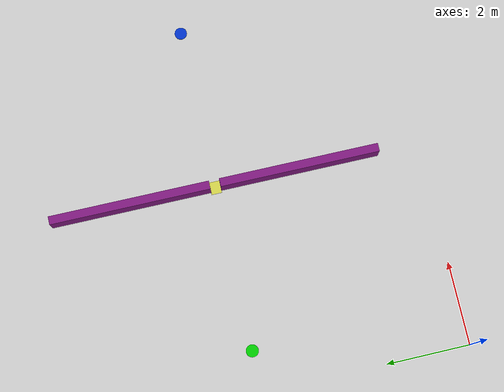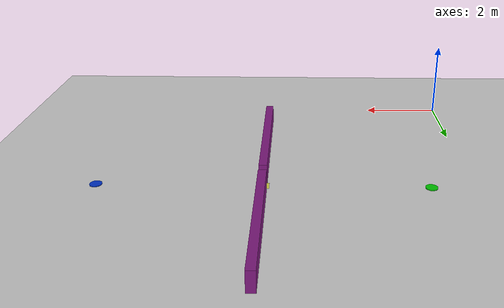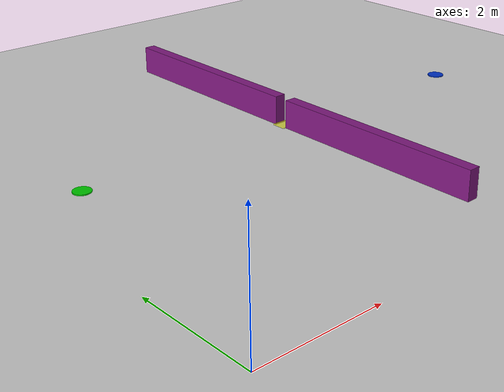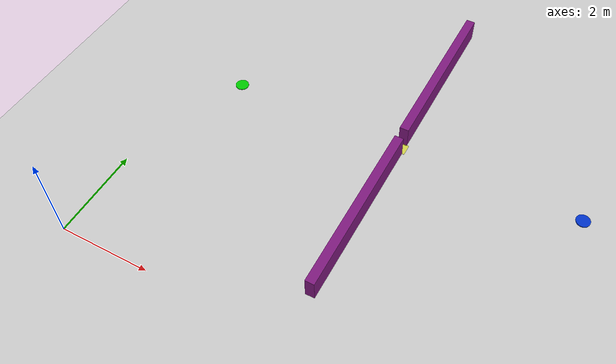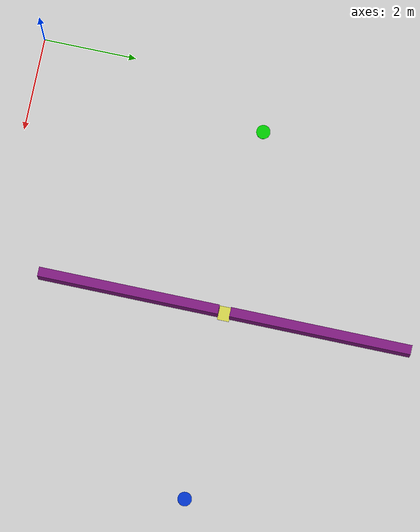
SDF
<?xml version="1.0" ?>
<sdf version="1.6">
  <world name="narrow_gap_world">

    <physics name="default_physics" default="0" type="ode">
      <max_step_size>0.001</max_step_size>
      <real_time_factor>1</real_time_factor>
      <real_time_update_rate>1000</real_time_update_rate>
    </physics>

    <plugin name="gazebo_ros_state" filename="libgazebo_ros_state.so"/>

    <light name="sun" type="directional">
      <cast_shadows>true</cast_shadows>
      <pose>0 0 10 0 0 0</pose>
      <diffuse>1 1 1 1</diffuse>
      <specular>0.2 0.2 0.2 1</specular>
      <direction>-0.5 0.1 -0.9</direction>
    </light>

    <model name="ground_plane">
      <static>true</static>
      <link name="link">
        <collision name="collision">
          <geometry>
            <plane><normal>0 0 1</normal><size>20 20</size></plane>
          </geometry>
        </collision>
        <visual name="visual">
          <geometry>
            <plane><normal>0 0 1</normal><size>20 20</size></plane>
          </geometry>
          <material>
            <ambient>0.8 0.8 0.8 1</ambient>
            <diffuse>0.8 0.8 0.8 1</diffuse>
          </material>
        </visual>
      </link>
    </model>

    <!--
      Wall section 1: below the gap
      Centre at (5.0, 3.1) — runs from y=1.0 to y=4.875 (length = 3.75 m)
    -->
    <model name="wall_lower">
      <static>true</static>
      <pose>5.0 2.9375 0.25 0 0 0</pose>
      <link name="link">
        <collision name="collision">
          <geometry>
            <box><size>0.2 3.875 0.5</size></box>
          </geometry>
        </collision>
        <visual name="visual">
          <geometry>
            <box><size>0.2 3.875 0.5</size></box>
          </geometry>
          <material>
            <ambient>0.5 0.1 0.5 1</ambient>
            <diffuse>0.5 0.1 0.5 1</diffuse>
          </material>
        </visual>
      </link>
    </model>

    <!--
      Wall section 2: above the gap
      Centre at (5.0, 7.0625) — runs from y=5.125 to y=9.0 (length = 3.875 m)
    -->
    <model name="wall_upper">
      <static>true</static>
      <pose>5.0 7.0625 0.25 0 0 0</pose>
      <link name="link">
        <collision name="collision">
          <geometry>
            <box><size>0.2 3.875 0.5</size></box>
          </geometry>
        </collision>
        <visual name="visual">
          <geometry>
            <box><size>0.2 3.875 0.5</size></box>
          </geometry>
          <material>
            <ambient>0.5 0.1 0.5 1</ambient>
            <diffuse>0.5 0.1 0.5 1</diffuse>
          </material>
        </visual>
      </link>
    </model>

    <!-- Gap indicator (yellow): 0.25 m gap at y=4.875–5.125 -->
    <model name="gap_marker">
      <static>true</static>
      <pose>5.0 5.0 0.01 0 0 0</pose>
      <link name="link">
        <visual name="visual">
          <geometry>
            <box><size>0.3 0.25 0.02</size></box>
          </geometry>
          <material>
            <ambient>0.9 0.9 0.0 0.6</ambient>
            <diffuse>0.9 0.9 0.0 0.6</diffuse>
          </material>
        </visual>
      </link>
    </model>

    <model name="start_marker">
      <static>true</static>
      <pose>1.0 5.0 0.01 0 0 0</pose>
      <link name="link">
        <visual name="visual">
          <geometry>
            <cylinder><radius>0.15</radius><length>0.02</length></cylinder>
          </geometry>
          <material>
            <ambient>0.0 0.8 0.0 1</ambient>
            <diffuse>0.0 0.8 0.0 1</diffuse>
          </material>
        </visual>
      </link>
    </model>

    <model name="goal_marker">
      <static>true</static>
      <pose>9.0 5.0 0.01 0 0 0</pose>
      <link name="link">
        <visual name="visual">
          <geometry>
            <cylinder><radius>0.15</radius><length>0.02</length></cylinder>
          </geometry>
          <material>
            <ambient>0.0 0.2 0.8 1</ambient>
            <diffuse>0.0 0.2 0.8 1</diffuse>
          </material>
        </visual>
      </link>
    </model>

  </world>
</sdf>
